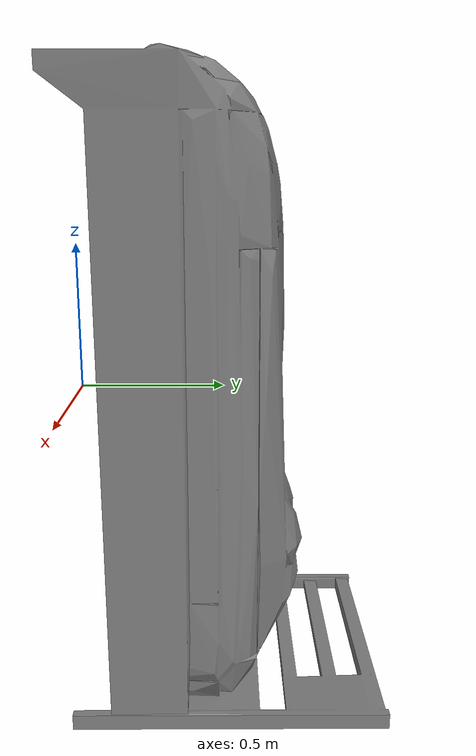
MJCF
<mujoco model="bed_single_reduced_vhacd">
  <default>
    <default class="visual">
      <geom group="2" type="mesh" contype="0" conaffinity="0"/>
    </default>
    <default class="collision">
      <geom group="3" type="mesh"/>
    </default>
  </default>
  <asset>
    <mesh file="bed_single_reduced_vhacd.obj"/>
  </asset>
  <worldbody>
    <body name="bed_single_reduced_vhacd">
      <geom mesh="bed_single_reduced_vhacd" class="visual"/>
      <geom mesh="bed_single_reduced_vhacd" class="collision"/>
    </body>
  </worldbody>
</mujoco>
